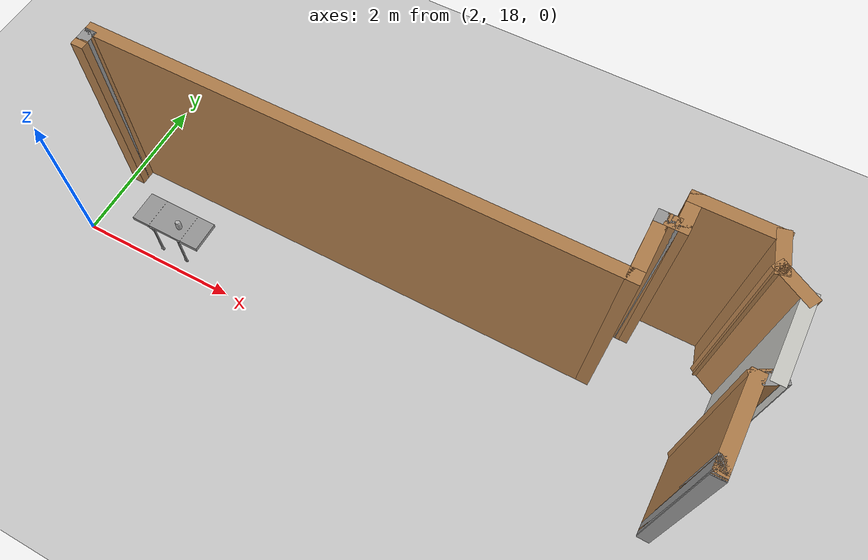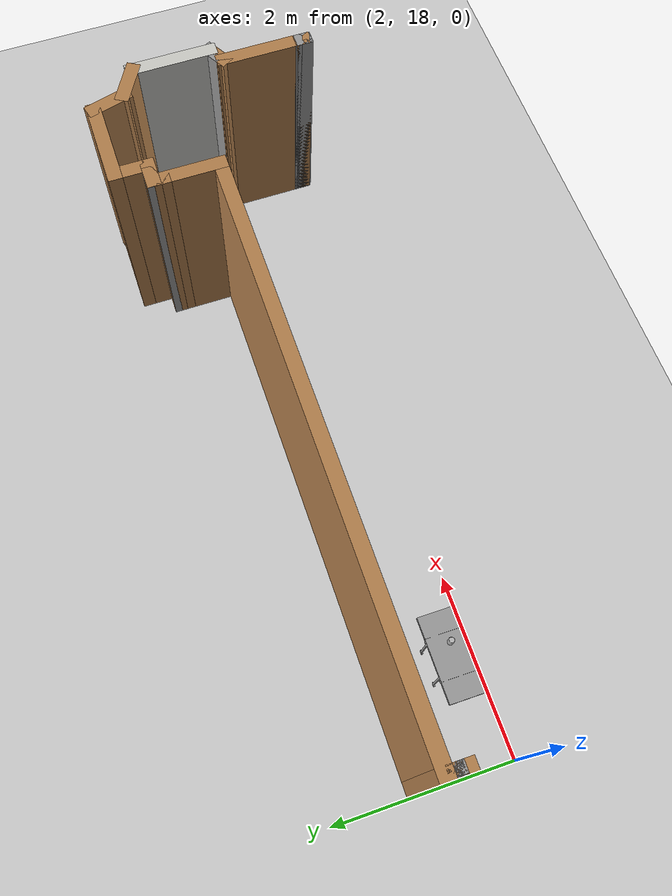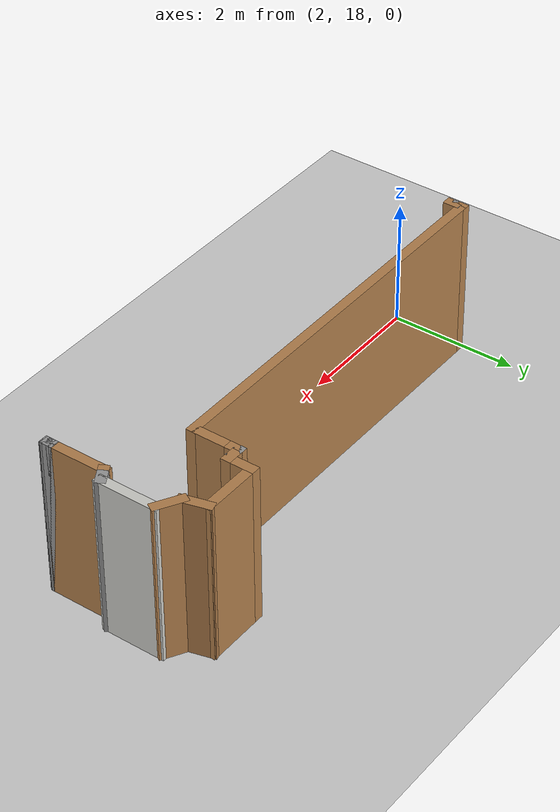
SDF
<sdf version="1.6">
 <world name="default">
  <model name="ground_plane">
   <static>1</static>
   <link name="link">
    <collision name="collision">
     <geometry><plane><normal>0 0 1</normal><size>100 100</size></plane></geometry>
     <surface>
      <contact><collide_bitmask>65535</collide_bitmask></contact>
      <friction><ode><mu>100</mu><mu2>50</mu2></ode></friction>
     </surface>
    </collision>
    <visual name="visual">
     <cast_shadows>0</cast_shadows>
     <geometry><plane><normal>0 0 1</normal><size>100 100</size></plane></geometry>
     <material>
      <script><uri>file://media/materials/scripts/gazebo.material</uri><name>Gazebo/Grey</name></script>
     </material>
    </visual>
   </link>
  </model>
  <model name="ecst_lab_v2">
   <pose>2.40126 7.41042 0 0 -0 -1.57079</pose>
   <link name="Wall_100">
    <collision name="Wall_100_Collision">
     <geometry><box><size>1 0.15 2.5</size></box></geometry>
     <pose>0 0 1.25 0 -0 0</pose>
    </collision>
    <visual name="Wall_100_Visual">
     <pose>0 0 1.25 0 -0 0</pose>
     <geometry><box><size>1 0.15 2.5</size></box></geometry>
     <material>
      <script><uri>file://media/materials/scripts/gazebo.material</uri><name>Gazebo/Wood</name></script>
      <ambient>1 1 1 1</ambient>
     </material>
     <meta><layer>0</layer></meta>
    </visual>
    <pose>-10.8485 7.06822 0 0 -0 0</pose>
   </link>
   <link name="Wall_101">
    <collision name="Wall_101_Collision">
     <geometry><box><size>0.15 0.15 2.5</size></box></geometry>
     <pose>0 0 1.25 0 -0 0</pose>
    </collision>
    <visual name="Wall_101_Visual">
     <pose>0 0 1.25 0 -0 0</pose>
     <geometry><box><size>0.15 0.15 2.5</size></box></geometry>
     <material>
      <script><uri>file://media/materials/scripts/gazebo.material</uri><name>Gazebo/Grey</name></script>
      <ambient>1 1 1 1</ambient>
     </material>
     <meta><layer>0</layer></meta>
    </visual>
    <pose>-10.4235 7.06822 0 0 -0 0</pose>
   </link>
   <link name="Wall_102">
    <collision name="Wall_102_Collision">
     <geometry><box><size>0.16 0.15 2.5</size></box></geometry>
     <pose>0 0 1.25 0 -0 0</pose>
    </collision>
    <visual name="Wall_102_Visual">
     <pose>0 0 1.25 0 -0 0</pose>
     <geometry><box><size>0.16 0.15 2.5</size></box></geometry>
     <material>
      <script><uri>file://media/materials/scripts/gazebo.material</uri><name>Gazebo/Grey</name></script>
      <ambient>1 1 1 1</ambient>
     </material>
     <meta><layer>0</layer></meta>
    </visual>
    <pose>-10.4185 7.06822 0 0 -0 0</pose>
   </link>
   <link name="Wall_103">
    <collision name="Wall_103_Collision">
     <geometry><box><size>0.16 0.15 2.5</size></box></geometry>
     <pose>0 0 1.25 0 -0 0</pose>
    </collision>
    <visual name="Wall_103_Visual">
     <pose>0 0 1.25 0 -0 0</pose>
     <geometry><box><size>0.16 0.15 2.5</size></box></geometry>
     <material>
      <script><uri>file://media/materials/scripts/gazebo.material</uri><name>Gazebo/Grey</name></script>
      <ambient>1 1 1 1</ambient>
     </material>
     <meta><layer>0</layer></meta>
    </visual>
    <pose>-10.4085 7.06822 0 0 -0 0</pose>
   </link>
   <link name="Wall_104">
    <collision name="Wall_104_Collision">
     <geometry><box><size>0.16 0.15 2.5</size></box></geometry>
     <pose>0 0 1.25 0 -0 0</pose>
    </collision>
    <visual name="Wall_104_Visual">
     <pose>0 0 1.25 0 -0 0</pose>
     <geometry><box><size>0.16 0.15 2.5</size></box></geometry>
     <material>
      <script><uri>file://media/materials/scripts/gazebo.material</uri><name>Gazebo/Wood</name></script>
      <ambient>1 1 1 1</ambient>
     </material>
     <meta><layer>0</layer></meta>
    </visual>
    <pose>-10.3985 7.06822 0 0 -0 0</pose>
   </link>
   <link name="Wall_105">
    <collision name="Wall_105_Collision">
     <geometry><box><size>0.16 0.15 2.5</size></box></geometry>
     <pose>0 0 1.25 0 -0 0</pose>
    </collision>
    <visual name="Wall_105_Visual">
     <pose>0 0 1.25 0 -0 0</pose>
     <geometry><box><size>0.16 0.15 2.5</size></box></geometry>
     <material>
      <script><uri>file://media/materials/scripts/gazebo.material</uri><name>Gazebo/Grey</name></script>
      <ambient>1 1 1 1</ambient>
     </material>
     <meta><layer>0</layer></meta>
    </visual>
    <pose>-10.3885 7.06822 0 0 -0 0</pose>
   </link>
   <link name="Wall_106">
    <collision name="Wall_106_Collision">
     <geometry><box><size>0.16 0.15 2.5</size></box></geometry>
     <pose>0 0 1.25 0 -0 0</pose>
    </collision>
    <visual name="Wall_106_Visual">
     <pose>0 0 1.25 0 -0 0</pose>
     <geometry><box><size>0.16 0.15 2.5</size></box></geometry>
     <material>
      <script><uri>file://media/materials/scripts/gazebo.material</uri><name>Gazebo/Wood</name></script>
      <ambient>1 1 1 1</ambient>
     </material>
     <meta><layer>0</layer></meta>
    </visual>
    <pose>-10.3785 7.06822 0 0 -0 0</pose>
   </link>
   <link name="Wall_111">
    <collision name="Wall_111_Collision">
     <geometry><box><size>0.16 0.15 2.5</size></box></geometry>
     <pose>0 0 1.25 0 -0 0</pose>
    </collision>
    <visual name="Wall_111_Visual">
     <pose>0 0 1.25 0 -0 0</pose>
     <geometry><box><size>0.16 0.15 2.5</size></box></geometry>
     <material>
      <script><uri>file://media/materials/scripts/gazebo.material</uri><name>Gazebo/Grey</name></script>
      <ambient>1 1 1 1</ambient>
     </material>
     <meta><layer>0</layer></meta>
    </visual>
    <pose>-10.3685 7.06822 0 0 -0 0</pose>
   </link>
   <link name="Wall_112">
    <collision name="Wall_112_Collision">
     <geometry><box><size>0.16 0.15 2.5</size></box></geometry>
     <pose>0 0 1.25 0 -0 0</pose>
    </collision>
    <visual name="Wall_112_Visual">
     <pose>0 0 1.25 0 -0 0</pose>
     <geometry><box><size>0.16 0.15 2.5</size></box></geometry>
     <material>
      <script><uri>file://media/materials/scripts/gazebo.material</uri><name>Gazebo/Grey</name></script>
      <ambient>1 1 1 1</ambient>
     </material>
     <meta><layer>0</layer></meta>
    </visual>
    <pose>-10.3685 7.06822 0 0 -0 3.14159</pose>
   </link>
   <link name="Wall_113">
    <collision name="Wall_113_Collision">
     <geometry><box><size>0.16 0.15 2.5</size></box></geometry>
     <pose>0 0 1.25 0 -0 0</pose>
    </collision>
    <visual name="Wall_113_Visual">
     <pose>0 0 1.25 0 -0 0</pose>
     <geometry><box><size>0.16 0.15 2.5</size></box></geometry>
     <material>
      <script><uri>file://media/materials/scripts/gazebo.material</uri><name>Gazebo/Grey</name></script>
      <ambient>1 1 1 1</ambient>
     </material>
     <meta><layer>0</layer></meta>
    </visual>
    <pose>-10.3685 7.06822 0 0 -0 0</pose>
   </link>
   <link name="Wall_114">
    <collision name="Wall_114_Collision">
     <geometry><box><size>0.16 0.15 2.5</size></box></geometry>
     <pose>0 0 1.25 0 -0 0</pose>
    </collision>
    <visual name="Wall_114_Visual">
     <pose>0 0 1.25 0 -0 0</pose>
     <geometry><box><size>0.16 0.15 2.5</size></box></geometry>
     <material>
      <script><uri>file://media/materials/scripts/gazebo.material</uri><name>Gazebo/Grey</name></script>
      <ambient>1 1 1 1</ambient>
     </material>
     <meta><layer>0</layer></meta>
    </visual>
    <pose>-10.3685 7.06822 0 0 -0 3.14159</pose>
   </link>
   <link name="Wall_115">
    <collision name="Wall_115_Collision">
     <geometry><box><size>0.16 0.15 2.5</size></box></geometry>
     <pose>0 0 1.25 0 -0 0</pose>
    </collision>
    <visual name="Wall_115_Visual">
     <pose>0 0 1.25 0 -0 0</pose>
     <geometry><box><size>0.16 0.15 2.5</size></box></geometry>
     <material>
      <script><uri>file://media/materials/scripts/gazebo.material</uri><name>Gazebo/Wood</name></script>
      <ambient>1 1 1 1</ambient>
     </material>
     <meta><layer>0</layer></meta>
    </visual>
    <pose>-10.3685 7.06822 0 0 -0 0</pose>
   </link>
   <link name="Wall_82">
    <collision name="Wall_82_Collision">
     <geometry><box><size>0.25 0.15 2.5</size></box></geometry>
     <pose>0 0 1.25 0 -0 0</pose>
    </collision>
    <visual name="Wall_82_Visual">
     <pose>0 0 1.25 0 -0 0</pose>
     <geometry><box><size>0.25 0.15 2.5</size></box></geometry>
     <material>
      <script><uri>file://media/materials/scripts/gazebo.material</uri><name>Gazebo/Wood</name></script>
      <ambient>1 1 1 1</ambient>
     </material>
     <meta><layer>0</layer></meta>
    </visual>
    <pose>-11.5466 -0.302274 0 0 -0 3.14159</pose>
   </link>
   <link name="Wall_83">
    <collision name="Wall_83_Collision">
     <geometry><box><size>0.15 0.15 2.5</size></box></geometry>
     <pose>0 0 1.25 0 -0 0</pose>
    </collision>
    <visual name="Wall_83_Visual">
     <pose>0 0 1.25 0 -0 0</pose>
     <geometry><box><size>0.15 0.15 2.5</size></box></geometry>
     <material>
      <script><uri>file://media/materials/scripts/gazebo.material</uri><name>Gazebo/Grey</name></script>
      <ambient>1 1 1 1</ambient>
     </material>
     <meta><layer>0</layer></meta>
    </visual>
    <pose>-11.5966 -0.302274 0 0 -0 0</pose>
   </link>
   <link name="Wall_84">
    <collision name="Wall_84_Collision">
     <geometry><box><size>0.16 0.15 2.5</size></box></geometry>
     <pose>0 0 1.25 0 -0 0</pose>
    </collision>
    <visual name="Wall_84_Visual">
     <pose>0 0 1.25 0 -0 0</pose>
     <geometry><box><size>0.16 0.15 2.5</size></box></geometry>
     <material>
      <script><uri>file://media/materials/scripts/gazebo.material</uri><name>Gazebo/Grey</name></script>
      <ambient>1 1 1 1</ambient>
     </material>
     <meta><layer>0</layer></meta>
    </visual>
    <pose>-11.5916 -0.302274 0 0 -0 0</pose>
   </link>
   <link name="Wall_85">
    <collision name="Wall_85_Collision">
     <geometry><box><size>0.25 0.15 2.5</size></box></geometry>
     <pose>0 0 1.25 0 -0 0</pose>
    </collision>
    <visual name="Wall_85_Visual">
     <pose>0 0 1.25 0 -0 0</pose>
     <geometry><box><size>0.25 0.15 2.5</size></box></geometry>
     <material>
      <script><uri>file://media/materials/scripts/gazebo.material</uri><name>Gazebo/Wood</name></script>
      <ambient>1 1 1 1</ambient>
     </material>
     <meta><layer>0</layer></meta>
    </visual>
    <pose>-11.6366 -0.302274 0 0 -0 3.14159</pose>
   </link>
   <link name="Wall_86">
    <collision name="Wall_86_Collision">
     <geometry><box><size>6.25 0.15 2.5</size></box></geometry>
     <pose>0 0 1.25 0 -0 0</pose>
    </collision>
    <visual name="Wall_86_Visual">
     <pose>0 0 1.25 0 -0 0</pose>
     <geometry><box><size>6.25 0.15 2.5</size></box></geometry>
     <material>
      <script><uri>file://media/materials/scripts/gazebo.material</uri><name>Gazebo/Wood</name></script>
      <ambient>1 1 1 1</ambient>
     </material>
     <meta><layer>0</layer></meta>
    </visual>
    <pose>-11.6866 2.74773 0 0 -0 1.5708</pose>
   </link>
   <link name="Wall_87">
    <collision name="Wall_87_Collision">
     <geometry><box><size>0.75 0.15 2.5</size></box></geometry>
     <pose>0 0 1.25 0 -0 0</pose>
    </collision>
    <visual name="Wall_87_Visual">
     <pose>0 0 1.25 0 -0 0</pose>
     <geometry><box><size>0.75 0.15 2.5</size></box></geometry>
     <material>
      <script><uri>file://media/materials/scripts/gazebo.material</uri><name>Gazebo/Wood</name></script>
      <ambient>1 1 1 1</ambient>
     </material>
     <meta><layer>0</layer></meta>
    </visual>
    <pose>-11.9866 5.79773 0 0 -0 3.14159</pose>
   </link>
   <link name="Wall_88">
    <collision name="Wall_88_Collision">
     <geometry><box><size>0.25 0.15 2.5</size></box></geometry>
     <pose>0 0 1.25 0 -0 0</pose>
    </collision>
    <visual name="Wall_88_Visual">
     <pose>0 0 1.25 0 -0 0</pose>
     <geometry><box><size>0.25 0.15 2.5</size></box></geometry>
     <material>
      <script><uri>file://media/materials/scripts/gazebo.material</uri><name>Gazebo/Wood</name></script>
      <ambient>1 1 1 1</ambient>
     </material>
     <meta><layer>0</layer></meta>
    </visual>
    <pose>-12.3366 5.79773 0 0 -0 3.14159</pose>
   </link>
   <link name="Wall_89">
    <collision name="Wall_89_Collision">
     <geometry><box><size>0.25 0.15 2.5</size></box></geometry>
     <pose>0 0 1.25 0 -0 0</pose>
    </collision>
    <visual name="Wall_89_Visual">
     <pose>0 0 1.25 0 -0 0</pose>
     <geometry><box><size>0.25 0.15 2.5</size></box></geometry>
     <material>
      <script><uri>file://media/materials/scripts/gazebo.material</uri><name>Gazebo/Grey</name></script>
      <ambient>1 1 1 1</ambient>
     </material>
     <meta><layer>0</layer></meta>
    </visual>
    <pose>-12.3866 5.84773 0 0 -0 1.5708</pose>
   </link>
   <link name="Wall_90">
    <collision name="Wall_90_Collision">
     <geometry><box><size>0.25 0.15 2.5</size></box></geometry>
     <pose>0 0 1.25 0 -0 0</pose>
    </collision>
    <visual name="Wall_90_Visual">
     <pose>0 0 1.25 0 -0 0</pose>
     <geometry><box><size>0.25 0.15 2.5</size></box></geometry>
     <material>
      <script><uri>file://media/materials/scripts/gazebo.material</uri><name>Gazebo/Wood</name></script>
      <ambient>1 1 1 1</ambient>
     </material>
     <meta><layer>0</layer></meta>
    </visual>
    <pose>-12.3866 5.84773 0 0 -0 -1.5708</pose>
   </link>
   <link name="Wall_91">
    <collision name="Wall_91_Collision">
     <geometry><box><size>0.25 0.15 2.5</size></box></geometry>
     <pose>0 0 1.25 0 -0 0</pose>
    </collision>
    <visual name="Wall_91_Visual">
     <pose>0 0 1.25 0 -0 0</pose>
     <geometry><box><size>0.25 0.15 2.5</size></box></geometry>
     <material>
      <script><uri>file://media/materials/scripts/gazebo.material</uri><name>Gazebo/Wood</name></script>
      <ambient>1 1 1 1</ambient>
     </material>
     <meta><layer>0</layer></meta>
    </visual>
    <pose>-12.3866 5.84773 0 0 -0 1.5708</pose>
   </link>
   <link name="Wall_92">
    <collision name="Wall_92_Collision">
     <geometry><box><size>0.25 0.15 2.5</size></box></geometry>
     <pose>0 0 1.25 0 -0 0</pose>
    </collision>
    <visual name="Wall_92_Visual">
     <pose>0 0 1.25 0 -0 0</pose>
     <geometry><box><size>0.25 0.15 2.5</size></box></geometry>
     <material>
      <script><uri>file://media/materials/scripts/gazebo.material</uri><name>Gazebo/Wood</name></script>
      <ambient>1 1 1 1</ambient>
     </material>
     <meta><layer>0</layer></meta>
    </visual>
    <pose>-12.3866 5.94773 0 0 -0 1.5708</pose>
   </link>
   <link name="Wall_93">
    <collision name="Wall_93_Collision">
     <geometry><box><size>0.5 0.15 2.5</size></box></geometry>
     <pose>0 0 1.25 0 -0 0</pose>
    </collision>
    <visual name="Wall_93_Visual">
     <pose>0 0 1.25 0 -0 0</pose>
     <geometry><box><size>0.5 0.15 2.5</size></box></geometry>
     <material>
      <script><uri>file://media/materials/scripts/gazebo.material</uri><name>Gazebo/Wood</name></script>
      <ambient>1 1 1 1</ambient>
     </material>
     <meta><layer>0</layer></meta>
    </visual>
    <pose>-12.5616 5.99773 0 0 -0 3.14159</pose>
   </link>
   <link name="Wall_94">
    <collision name="Wall_94_Collision">
     <geometry><box><size>1 0.15 2.5</size></box></geometry>
     <pose>0 0 1.25 0 -0 0</pose>
    </collision>
    <visual name="Wall_94_Visual">
     <pose>0 0 1.25 0 -0 0</pose>
     <geometry><box><size>1 0.15 2.5</size></box></geometry>
     <material>
      <script><uri>file://media/materials/scripts/gazebo.material</uri><name>Gazebo/Wood</name></script>
      <ambient>1 1 1 1</ambient>
     </material>
     <meta><layer>0</layer></meta>
    </visual>
    <pose>-12.7366 6.42273 0 0 -0 1.5708</pose>
   </link>
   <link name="Wall_95">
    <collision name="Wall_95_Collision">
     <geometry><box><size>0.5 0.15 2.5</size></box></geometry>
     <pose>0 0 1.25 0 -0 0</pose>
    </collision>
    <visual name="Wall_95_Visual">
     <pose>0 0 1.25 0 -0 0</pose>
     <geometry><box><size>0.5 0.15 2.5</size></box></geometry>
     <material>
      <script><uri>file://media/materials/scripts/gazebo.material</uri><name>Gazebo/Wood</name></script>
      <ambient>1 1 1 1</ambient>
     </material>
     <meta><layer>0</layer></meta>
    </visual>
    <pose>-12.5675 6.89302 0 0 -0 0.261799</pose>
   </link>
   <link name="Wall_96">
    <collision name="Wall_96_Collision">
     <geometry><box><size>0.5 0.15 2.5</size></box></geometry>
     <pose>0 0 1.25 0 -0 0</pose>
    </collision>
    <visual name="Wall_96_Visual">
     <pose>0 0 1.25 0 -0 0</pose>
     <geometry><box><size>0.5 0.15 2.5</size></box></geometry>
     <material>
      <script><uri>file://media/materials/scripts/gazebo.material</uri><name>Gazebo/Wood</name></script>
      <ambient>1 1 1 1</ambient>
     </material>
     <meta><layer>0</layer></meta>
    </visual>
    <pose>-12.311 7.08987 0 0 -0 1.0472</pose>
   </link>
   <link name="Wall_97">
    <collision name="Wall_97_Collision">
     <geometry><box><size>1 0.15 2.5</size></box></geometry>
     <pose>0 0 1.25 0 -0 0</pose>
    </collision>
    <visual name="Wall_97_Visual">
     <pose>0 0 1.25 0 -0 0</pose>
     <geometry><box><size>1 0.15 2.5</size></box></geometry>
     <material>
      <script><uri>file://media/materials/scripts/gazebo.material</uri><name>Gazebo/CeilingTiled</name></script>
      <ambient>1 1 1 1</ambient>
     </material>
     <meta><layer>0</layer></meta>
    </visual>
    <pose>-11.7985 7.24142 0 0 -0 0</pose>
   </link>
   <link name="Wall_98">
    <collision name="Wall_98_Collision">
     <geometry><box><size>0.25 0.15 2.5</size></box></geometry>
     <pose>0 0 1.25 0 -0 0</pose>
    </collision>
    <visual name="Wall_98_Visual">
     <pose>0 0 1.25 0 -0 0</pose>
     <geometry><box><size>0.25 0.15 2.5</size></box></geometry>
     <material>
      <script><uri>file://media/materials/scripts/gazebo.material</uri><name>Gazebo/Grey</name></script>
      <ambient>1 1 1 1</ambient>
     </material>
     <meta><layer>0</layer></meta>
    </visual>
    <pose>-11.3485 7.19812 0 0 -0 -1.0472</pose>
   </link>
   <link name="Wall_99">
    <collision name="Wall_99_Collision">
     <geometry><box><size>0.25 0.15 2.5</size></box></geometry>
     <pose>0 0 1.25 0 -0 0</pose>
    </collision>
    <visual name="Wall_99_Visual">
     <pose>0 0 1.25 0 -0 0</pose>
     <geometry><box><size>0.25 0.15 2.5</size></box></geometry>
     <material>
      <script><uri>file://media/materials/scripts/gazebo.material</uri><name>Gazebo/Wood</name></script>
      <ambient>1 1 1 1</ambient>
     </material>
     <meta><layer>0</layer></meta>
    </visual>
    <pose>-11.2985 7.11152 0 0 -0 -1.0472</pose>
   </link>
   <static>1</static>
  </model>
  <model name="ecst_table_v5">
   <link name="link_1">
    <inertial>
     <mass>5</mass>
     <inertia>
      <ixx>0.188383</ixx>
      <ixy>0</ixy>
      <ixz>0</ixz>
      <iyy>0.470263</iyy>
      <iyz>0</iyz>
      <izz>0.402848</izz>
     </inertia>
    </inertial>
    <visual name="visual">
     <geometry>
      <mesh><uri>/home/jason/Downloads/CALI_TABLE_MODEL_METERS_2_updated.stl</uri><scale>1 1 1</scale></mesh>
     </geometry>
     <material>
      <lighting>1</lighting>
      <script><uri>file://media/materials/scripts/gazebo.material</uri><name>Gazebo/Grey</name></script>
      <emissive>0 0 0 1</emissive>
      <shader type="vertex"><normal_map>__default__</normal_map></shader>
      <ambient>0.3 0.3 0.3 1</ambient>
      <diffuse>0.7 0.7 0.7 1</diffuse>
      <specular>0.01 0.01 0.01 1</specular>
     </material>
    </visual>
    <collision name="collision">
     <geometry><box><size>0.906426 0.381 0.554037</size></box></geometry>
     <surface>
      <friction>
       <ode><mu>1</mu><mu2>1</mu2><fdir1>0 0 0</fdir1><slip1>0</slip1><slip2>0</slip2></ode>
       <torsional>
        <coefficient>1</coefficient>
        <patch_radius>0</patch_radius>
        <surface_radius>0</surface_radius>
        <use_patch_radius>1</use_patch_radius>
        <ode><slip>0</slip></ode>
       </torsional>
      </friction>
      <bounce><restitution_coefficient>0</restitution_coefficient><threshold>1e+06</threshold></bounce>
      <contact>
       <collide_without_contact>0</collide_without_contact>
       <collide_without_contact_bitmask>1</collide_without_contact_bitmask>
       <collide_bitmask>1</collide_bitmask>
       <ode>
        <soft_cfm>0</soft_cfm>
        <soft_erp>0.2</soft_erp>
        <kp>1e+13</kp>
        <kd>1</kd>
        <max_vel>0.01</max_vel>
        <min_depth>0</min_depth>
       </ode>
       <bullet>
        <split_impulse>1</split_impulse>
        <split_impulse_penetration_threshold>-0.01</split_impulse_penetration_threshold>
        <soft_cfm>0</soft_cfm>
        <soft_erp>0.2</soft_erp>
        <kp>1e+13</kp>
        <kd>1</kd>
       </bullet>
      </contact>
     </surface>
    </collision>
   </link>
   <static>0</static>
   <pose>3.14272 18.3325 0.277013 0 -1.2e-05 -0.001714</pose>
  </model>
  <model name="coke_can">
   <link name="link">
    <inertial>
     <pose>0 0 0.06 0 -0 0</pose>
     <mass>0.39</mass>
     <inertia>
      <ixx>0.00055575</ixx>
      <ixy>0</ixy>
      <ixz>0</ixz>
      <iyy>0.00055575</iyy>
      <iyz>0</iyz>
      <izz>0.0001755</izz>
     </inertia>
    </inertial>
    <collision name="collision">
     <pose>0.003937 0.004724 -0.18 0 -0 0</pose>
     <geometry><mesh><uri>model://coke_can/meshes/coke_can.dae</uri></mesh></geometry>
     <surface>
      <friction><ode><mu>1</mu><mu2>1</mu2></ode></friction>
      <contact><ode><kp>1e+07</kp><kd>1</kd><min_depth>0.001</min_depth><max_vel>0.1</max_vel></ode></contact>
     </surface>
    </collision>
    <visual name="visual">
     <pose>0.003937 0.004724 -0.18 0 -0 0</pose>
     <geometry><mesh><uri>model://coke_can/meshes/coke_can.dae</uri></mesh></geometry>
    </visual>
   </link>
   <pose>3.26072 18.2908 0.551462 -0.011272 0.00402 -0.351723</pose>
  </model>
 </world>
</sdf>
